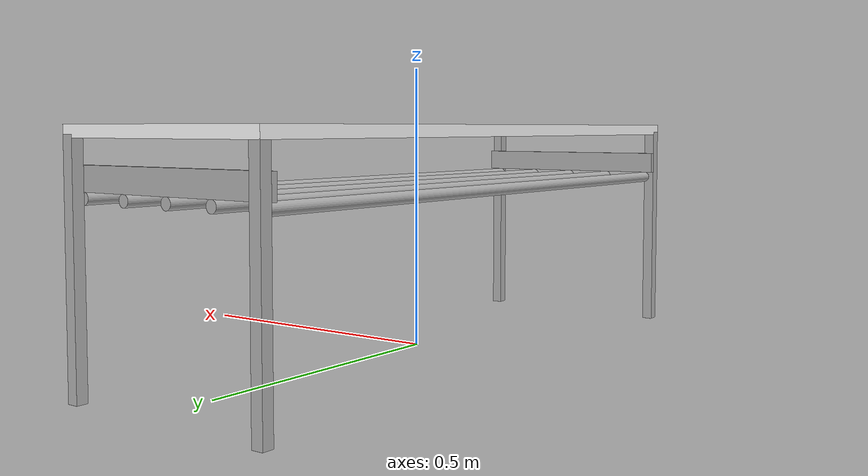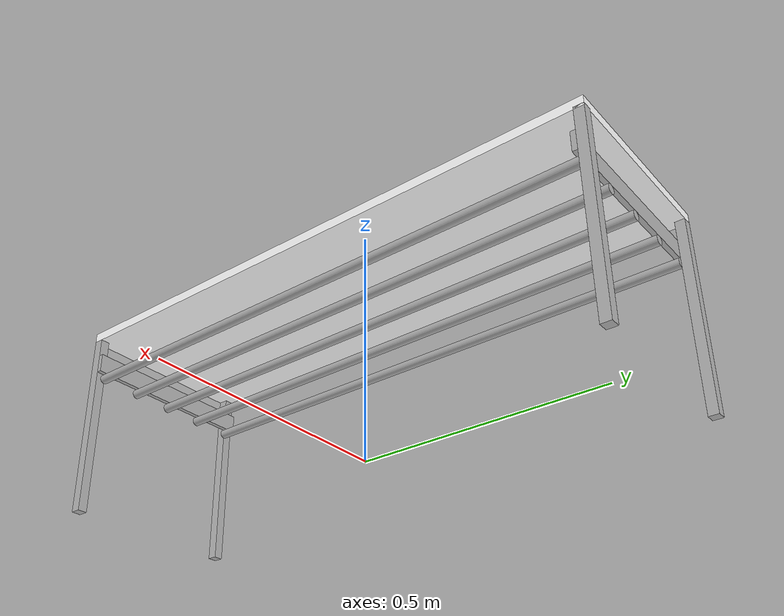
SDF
<?xml version="1.0" ?>
<sdf version="1.8">
  <model name="wrc_long_table">
    <link name="link">
      <inertial>
        <mass>1.0</mass>
      </inertial>

      <collision name="top">
        <pose>0 0 0.39 0 0 0</pose>
        <geometry>
          <box>
            <size>0.40 1.20 0.02</size>
          </box>
        </geometry>
      </collision>

      <visual name="top_v">
        <pose>0 0 0.39 0 0 0</pose>
        <geometry>
          <box>
            <size>0.40 1.20 0.02</size>
          </box>
        </geometry>

        <material>
          <ambient>1 1 1 1</ambient>
          <diffuse>1 1 1 1</diffuse>

        </material>
      </visual>

      <collision name="leg1">
        <pose>0.19 0.59 0.185 0 0 0</pose>
        <geometry>
          <box>
            <size>0.02 0.02 0.40</size>
          </box>
        </geometry>
      </collision>

      <visual name="leg1_v">
        <pose>0.19 0.59 0.185 0 0 0</pose>
        <geometry>
          <box>
            <size>0.02 0.02 0.40</size>
          </box>
        </geometry>

        <material>
          <ambient>.7 .7 .7 1</ambient>
          <diffuse>.7 .7 .7 1</diffuse>

        </material>
      </visual>

      <collision name="leg2">
        <pose>0.19 -0.59 0.185 0 0 0</pose>
        <geometry>
          <box>
            <size>0.02 0.02 0.40</size>
          </box>
        </geometry>
      </collision>

      <visual name="leg2_v">
        <pose>0.19 -0.59 0.185 0 0 0</pose>
        <geometry>
          <box>
            <size>0.02 0.02 0.40</size>
          </box>
        </geometry>

        <material>
          <ambient>.7 .7 .7 1</ambient>
          <diffuse>.7 .7 .7 1</diffuse>

        </material>
      </visual>

      <collision name="leg3">
        <pose>-0.19 0.59 0.185 0 0 0</pose>
        <geometry>
          <box>
            <size>0.02 0.02 0.40</size>
          </box>
        </geometry>
      </collision>

      <visual name="leg3_v">
        <pose>-0.19 0.59 0.185 0 0 0</pose>
        <geometry>
          <box>
            <size>0.02 0.02 0.40</size>
          </box>
        </geometry>

        <material>
          <ambient>.7 .7 .7 1</ambient>
          <diffuse>.7 .7 .7 1</diffuse>

        </material>
      </visual>

      <collision name="leg4">
        <pose>-0.19 -0.59 0.185 0 0 0</pose>
        <geometry>
          <box>
            <size>0.02 0.02 0.40</size>
          </box>
        </geometry>
      </collision>

      <visual name="leg4_v">
        <pose>-0.19 -0.59 0.185 0 0 0</pose>
        <geometry>
          <box>
            <size>0.02 0.02 0.40</size>
          </box>
        </geometry>

        <material>
          <ambient>.7 .7 .7 1</ambient>
          <diffuse>.7 .7 .7 1</diffuse>

        </material>
      </visual>

      <collision name="side_panel1">
        <pose>0 0.575 0.32 0 0 0</pose>
        <geometry>
          <box>
            <size>0.40 0.01 0.04</size>
          </box>
        </geometry>
      </collision>

      <visual name="side_panel1_v">
        <pose>0 0.575 0.32 0 0 0</pose>
        <geometry>
          <box>
            <size>0.40 0.01 0.04</size>
          </box>
        </geometry>

        <material>
          <ambient>.7 .7 .7 1</ambient>
          <diffuse>.7 .7 .7 1</diffuse>

        </material>
      </visual>

      <collision name="side_panel2">
        <pose>0 -0.575 0.32 0 0 0</pose>
        <geometry>
          <box>
            <size>0.40 0.01 0.04</size>
          </box>
        </geometry>
      </collision>

      <visual name="side_panel2_v">
        <pose>0 -0.575 0.32 0 0 0</pose>
        <geometry>
          <box>
            <size>0.40 0.01 0.04</size>
          </box>
        </geometry>

        <material>
          <ambient>.7 .7 .7 1</ambient>
          <diffuse>.7 .7 .7 1</diffuse>

        </material>
      </visual>

      <collision name="bar1">
        <pose>-0.18 0 0.29 0 1.57 1.57</pose>
        <geometry>
          <cylinder>
            <radius>0.01</radius>
            <length>1.16</length>
          </cylinder>
        </geometry>
      </collision>

      <visual name="bar1_v">
        <pose>-0.18 0 0.29 0 1.57 1.57</pose>
        <geometry>
          <cylinder>
            <radius>0.01</radius>
            <length>1.16</length>
          </cylinder>
        </geometry>

        <material>
          <ambient>.7 .7 .7 1</ambient>
          <diffuse>.7 .7 .7 1</diffuse>

        </material>
      </visual>

      <collision name="bar2">
        <pose>-0.09 0 0.29 0 1.57 1.57</pose>
        <geometry>
          <cylinder>
            <radius>0.01</radius>
            <length>1.16</length>
          </cylinder>
        </geometry>
      </collision>

      <visual name="bar2_v">
        <pose>-0.09 0 0.29 0 1.57 1.57</pose>
        <geometry>
          <cylinder>
            <radius>0.01</radius>
            <length>1.16</length>
          </cylinder>
        </geometry>

        <material>
          <ambient>.7 .7 .7 1</ambient>
          <diffuse>.7 .7 .7 1</diffuse>

        </material>
      </visual>

      <collision name="bar3">
        <pose>0 0 0.29 0 1.57 1.57</pose>
        <geometry>
          <cylinder>
            <radius>0.01</radius>
            <length>1.16</length>
          </cylinder>
        </geometry>
      </collision>

      <visual name="bar3_v">
        <pose>0 0 0.29 0 1.57 1.57</pose>
        <geometry>
          <cylinder>
            <radius>0.01</radius>
            <length>1.16</length>
          </cylinder>
        </geometry>

        <material>
          <ambient>.7 .7 .7 1</ambient>
          <diffuse>.7 .7 .7 1</diffuse>

        </material>
      </visual>

      <collision name="bar4">
        <pose>0.09 0 0.29 0 1.57 1.57</pose>
        <geometry>
          <cylinder>
            <radius>0.01</radius>
            <length>1.16</length>
          </cylinder>
        </geometry>
      </collision>

      <visual name="bar4_v">
        <pose>0.09 0 0.29 0 1.57 1.57</pose>
        <geometry>
          <cylinder>
            <radius>0.01</radius>
            <length>1.16</length>
          </cylinder>
        </geometry>

        <material>
          <ambient>.7 .7 .7 1</ambient>
          <diffuse>.7 .7 .7 1</diffuse>

        </material>
      </visual>

      <collision name="bar5">
        <pose>0.18 0 0.29 0 1.57 1.57</pose>
        <geometry>
          <cylinder>
            <radius>0.01</radius>
            <length>1.16</length>
          </cylinder>
        </geometry>
      </collision>

      <visual name="bar5_v">
        <pose>0.18 0 0.29 0 1.57 1.57</pose>
        <geometry>
          <cylinder>
            <radius>0.01</radius>
            <length>1.16</length>
          </cylinder>
        </geometry>

        <material>
          <ambient>.7 .7 .7 1</ambient>
          <diffuse>.7 .7 .7 1</diffuse>

        </material>
      </visual>
    </link>
  </model>
</sdf>
